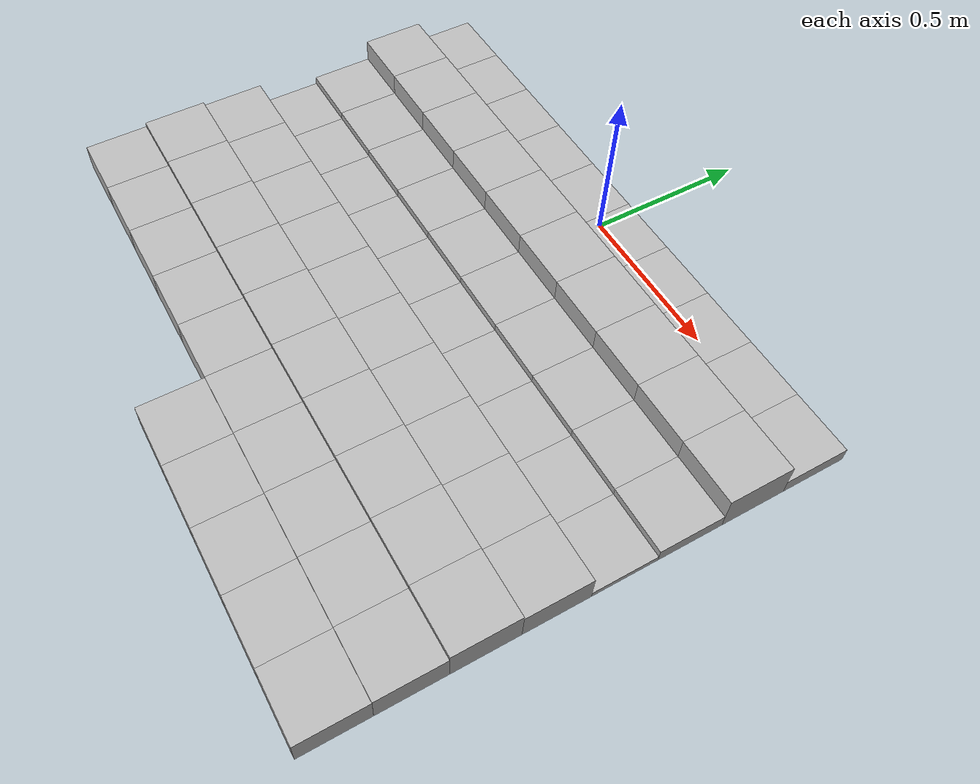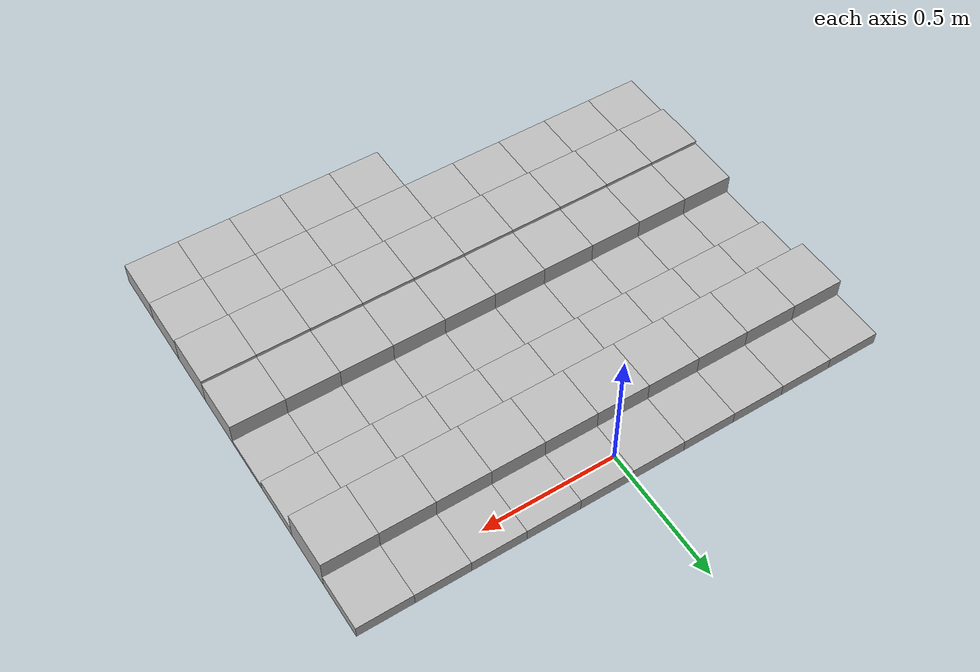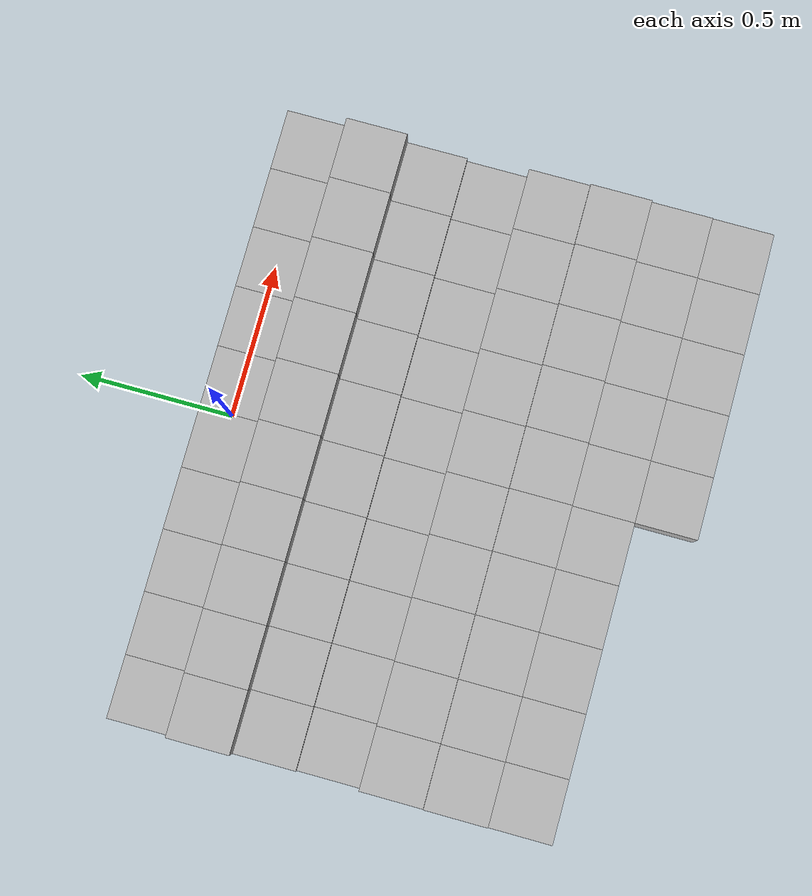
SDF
<sdf version="1.6">
 <model name="Terrain">
  <static>true</static>
  <link name="box_0_0">
   <pose>-0.9 0.0 0.0240620152889 0 0 0</pose>
   <inertial>
    <mass>1.0</mass>
    <inertia><ixx>0.0</ixx><ixy>0.0</ixy><ixz>0.0</ixz><iyy>0.0</iyy><iyz>0.0</iyz><izz>0.0</izz></inertia>
   </inertial>
   <collision name="collision"><geometry><box><size>0.2 0.2 0.0481240305779</size></box></geometry></collision>
   <visual name="visual"><geometry><box><size>0.2 0.2 0.0481240305779</size></box></geometry></visual>
  </link>
  <link name="box_0_1">
   <pose>-0.7 0.0 0.0240620152889 0 0 0</pose>
   <inertial>
    <mass>1.0</mass>
    <inertia><ixx>0.0</ixx><ixy>0.0</ixy><ixz>0.0</ixz><iyy>0.0</iyy><iyz>0.0</iyz><izz>0.0</izz></inertia>
   </inertial>
   <collision name="collision"><geometry><box><size>0.2 0.2 0.0481240305779</size></box></geometry></collision>
   <visual name="visual"><geometry><box><size>0.2 0.2 0.0481240305779</size></box></geometry></visual>
  </link>
  <link name="box_0_2">
   <pose>-0.5 0.0 0.0240620152889 0 0 0</pose>
   <inertial>
    <mass>1.0</mass>
    <inertia><ixx>0.0</ixx><ixy>0.0</ixy><ixz>0.0</ixz><iyy>0.0</iyy><iyz>0.0</iyz><izz>0.0</izz></inertia>
   </inertial>
   <collision name="collision"><geometry><box><size>0.2 0.2 0.0481240305779</size></box></geometry></collision>
   <visual name="visual"><geometry><box><size>0.2 0.2 0.0481240305779</size></box></geometry></visual>
  </link>
  <link name="box_0_3">
   <pose>-0.3 0.0 0.0240620152889 0 0 0</pose>
   <inertial>
    <mass>1.0</mass>
    <inertia><ixx>0.0</ixx><ixy>0.0</ixy><ixz>0.0</ixz><iyy>0.0</iyy><iyz>0.0</iyz><izz>0.0</izz></inertia>
   </inertial>
   <collision name="collision"><geometry><box><size>0.2 0.2 0.0481240305779</size></box></geometry></collision>
   <visual name="visual"><geometry><box><size>0.2 0.2 0.0481240305779</size></box></geometry></visual>
  </link>
  <link name="box_0_4">
   <pose>-0.1 0.0 0.0240620152889 0 0 0</pose>
   <inertial>
    <mass>1.0</mass>
    <inertia><ixx>0.0</ixx><ixy>0.0</ixy><ixz>0.0</ixz><iyy>0.0</iyy><iyz>0.0</iyz><izz>0.0</izz></inertia>
   </inertial>
   <collision name="collision"><geometry><box><size>0.2 0.2 0.0481240305779</size></box></geometry></collision>
   <visual name="visual"><geometry><box><size>0.2 0.2 0.0481240305779</size></box></geometry></visual>
  </link>
  <link name="box_0_5">
   <pose>0.1 0.0 0.0240620152889 0 0 0</pose>
   <inertial>
    <mass>1.0</mass>
    <inertia><ixx>0.0</ixx><ixy>0.0</ixy><ixz>0.0</ixz><iyy>0.0</iyy><iyz>0.0</iyz><izz>0.0</izz></inertia>
   </inertial>
   <collision name="collision"><geometry><box><size>0.2 0.2 0.0481240305779</size></box></geometry></collision>
   <visual name="visual"><geometry><box><size>0.2 0.2 0.0481240305779</size></box></geometry></visual>
  </link>
  <link name="box_0_6">
   <pose>0.3 0.0 0.0240620152889 0 0 0</pose>
   <inertial>
    <mass>1.0</mass>
    <inertia><ixx>0.0</ixx><ixy>0.0</ixy><ixz>0.0</ixz><iyy>0.0</iyy><iyz>0.0</iyz><izz>0.0</izz></inertia>
   </inertial>
   <collision name="collision"><geometry><box><size>0.2 0.2 0.0481240305779</size></box></geometry></collision>
   <visual name="visual"><geometry><box><size>0.2 0.2 0.0481240305779</size></box></geometry></visual>
  </link>
  <link name="box_0_7">
   <pose>0.5 0.0 0.0240620152889 0 0 0</pose>
   <inertial>
    <mass>1.0</mass>
    <inertia><ixx>0.0</ixx><ixy>0.0</ixy><ixz>0.0</ixz><iyy>0.0</iyy><iyz>0.0</iyz><izz>0.0</izz></inertia>
   </inertial>
   <collision name="collision"><geometry><box><size>0.2 0.2 0.0481240305779</size></box></geometry></collision>
   <visual name="visual"><geometry><box><size>0.2 0.2 0.0481240305779</size></box></geometry></visual>
  </link>
  <link name="box_0_8">
   <pose>0.7 0.0 0.0240620152889 0 0 0</pose>
   <inertial>
    <mass>1.0</mass>
    <inertia><ixx>0.0</ixx><ixy>0.0</ixy><ixz>0.0</ixz><iyy>0.0</iyy><iyz>0.0</iyz><izz>0.0</izz></inertia>
   </inertial>
   <collision name="collision"><geometry><box><size>0.2 0.2 0.0481240305779</size></box></geometry></collision>
   <visual name="visual"><geometry><box><size>0.2 0.2 0.0481240305779</size></box></geometry></visual>
  </link>
  <link name="box_0_9">
   <pose>0.9 0.0 0.0240620152889 0 0 0</pose>
   <inertial>
    <mass>1.0</mass>
    <inertia><ixx>0.0</ixx><ixy>0.0</ixy><ixz>0.0</ixz><iyy>0.0</iyy><iyz>0.0</iyz><izz>0.0</izz></inertia>
   </inertial>
   <collision name="collision"><geometry><box><size>0.2 0.2 0.0481240305779</size></box></geometry></collision>
   <visual name="visual"><geometry><box><size>0.2 0.2 0.0481240305779</size></box></geometry></visual>
  </link>
  <link name="box_1_0">
   <pose>-0.9 -0.2 0.0597477207047 0 0 0</pose>
   <inertial>
    <mass>1.0</mass>
    <inertia><ixx>0.0</ixx><ixy>0.0</ixy><ixz>0.0</ixz><iyy>0.0</iyy><iyz>0.0</iyz><izz>0.0</izz></inertia>
   </inertial>
   <collision name="collision"><geometry><box><size>0.2 0.2 0.119495441409</size></box></geometry></collision>
   <visual name="visual"><geometry><box><size>0.2 0.2 0.119495441409</size></box></geometry></visual>
  </link>
  <link name="box_1_1">
   <pose>-0.7 -0.2 0.0597477207047 0 0 0</pose>
   <inertial>
    <mass>1.0</mass>
    <inertia><ixx>0.0</ixx><ixy>0.0</ixy><ixz>0.0</ixz><iyy>0.0</iyy><iyz>0.0</iyz><izz>0.0</izz></inertia>
   </inertial>
   <collision name="collision"><geometry><box><size>0.2 0.2 0.119495441409</size></box></geometry></collision>
   <visual name="visual"><geometry><box><size>0.2 0.2 0.119495441409</size></box></geometry></visual>
  </link>
  <link name="box_1_2">
   <pose>-0.5 -0.2 0.0597477207047 0 0 0</pose>
   <inertial>
    <mass>1.0</mass>
    <inertia><ixx>0.0</ixx><ixy>0.0</ixy><ixz>0.0</ixz><iyy>0.0</iyy><iyz>0.0</iyz><izz>0.0</izz></inertia>
   </inertial>
   <collision name="collision"><geometry><box><size>0.2 0.2 0.119495441409</size></box></geometry></collision>
   <visual name="visual"><geometry><box><size>0.2 0.2 0.119495441409</size></box></geometry></visual>
  </link>
  <link name="box_1_3">
   <pose>-0.3 -0.2 0.0597477207047 0 0 0</pose>
   <inertial>
    <mass>1.0</mass>
    <inertia><ixx>0.0</ixx><ixy>0.0</ixy><ixz>0.0</ixz><iyy>0.0</iyy><iyz>0.0</iyz><izz>0.0</izz></inertia>
   </inertial>
   <collision name="collision"><geometry><box><size>0.2 0.2 0.119495441409</size></box></geometry></collision>
   <visual name="visual"><geometry><box><size>0.2 0.2 0.119495441409</size></box></geometry></visual>
  </link>
  <link name="box_1_4">
   <pose>-0.1 -0.2 0.0597477207047 0 0 0</pose>
   <inertial>
    <mass>1.0</mass>
    <inertia><ixx>0.0</ixx><ixy>0.0</ixy><ixz>0.0</ixz><iyy>0.0</iyy><iyz>0.0</iyz><izz>0.0</izz></inertia>
   </inertial>
   <collision name="collision"><geometry><box><size>0.2 0.2 0.119495441409</size></box></geometry></collision>
   <visual name="visual"><geometry><box><size>0.2 0.2 0.119495441409</size></box></geometry></visual>
  </link>
  <link name="box_1_5">
   <pose>0.1 -0.2 0.0597477207047 0 0 0</pose>
   <inertial>
    <mass>1.0</mass>
    <inertia><ixx>0.0</ixx><ixy>0.0</ixy><ixz>0.0</ixz><iyy>0.0</iyy><iyz>0.0</iyz><izz>0.0</izz></inertia>
   </inertial>
   <collision name="collision"><geometry><box><size>0.2 0.2 0.119495441409</size></box></geometry></collision>
   <visual name="visual"><geometry><box><size>0.2 0.2 0.119495441409</size></box></geometry></visual>
  </link>
  <link name="box_1_6">
   <pose>0.3 -0.2 0.0597477207047 0 0 0</pose>
   <inertial>
    <mass>1.0</mass>
    <inertia><ixx>0.0</ixx><ixy>0.0</ixy><ixz>0.0</ixz><iyy>0.0</iyy><iyz>0.0</iyz><izz>0.0</izz></inertia>
   </inertial>
   <collision name="collision"><geometry><box><size>0.2 0.2 0.119495441409</size></box></geometry></collision>
   <visual name="visual"><geometry><box><size>0.2 0.2 0.119495441409</size></box></geometry></visual>
  </link>
  <link name="box_1_7">
   <pose>0.5 -0.2 0.0597477207047 0 0 0</pose>
   <inertial>
    <mass>1.0</mass>
    <inertia><ixx>0.0</ixx><ixy>0.0</ixy><ixz>0.0</ixz><iyy>0.0</iyy><iyz>0.0</iyz><izz>0.0</izz></inertia>
   </inertial>
   <collision name="collision"><geometry><box><size>0.2 0.2 0.119495441409</size></box></geometry></collision>
   <visual name="visual"><geometry><box><size>0.2 0.2 0.119495441409</size></box></geometry></visual>
  </link>
  <link name="box_1_8">
   <pose>0.7 -0.2 0.0597477207047 0 0 0</pose>
   <inertial>
    <mass>1.0</mass>
    <inertia><ixx>0.0</ixx><ixy>0.0</ixy><ixz>0.0</ixz><iyy>0.0</iyy><iyz>0.0</iyz><izz>0.0</izz></inertia>
   </inertial>
   <collision name="collision"><geometry><box><size>0.2 0.2 0.119495441409</size></box></geometry></collision>
   <visual name="visual"><geometry><box><size>0.2 0.2 0.119495441409</size></box></geometry></visual>
  </link>
  <link name="box_1_9">
   <pose>0.9 -0.2 0.0597477207047 0 0 0</pose>
   <inertial>
    <mass>1.0</mass>
    <inertia><ixx>0.0</ixx><ixy>0.0</ixy><ixz>0.0</ixz><iyy>0.0</iyy><iyz>0.0</iyz><izz>0.0</izz></inertia>
   </inertial>
   <collision name="collision"><geometry><box><size>0.2 0.2 0.119495441409</size></box></geometry></collision>
   <visual name="visual"><geometry><box><size>0.2 0.2 0.119495441409</size></box></geometry></visual>
  </link>
  <link name="box_2_0">
   <pose>-0.9 -0.4 0.0225074383357 0 0 0</pose>
   <inertial>
    <mass>1.0</mass>
    <inertia><ixx>0.0</ixx><ixy>0.0</ixy><ixz>0.0</ixz><iyy>0.0</iyy><iyz>0.0</iyz><izz>0.0</izz></inertia>
   </inertial>
   <collision name="collision"><geometry><box><size>0.2 0.2 0.0450148766714</size></box></geometry></collision>
   <visual name="visual"><geometry><box><size>0.2 0.2 0.0450148766714</size></box></geometry></visual>
  </link>
  <link name="box_2_1">
   <pose>-0.7 -0.4 0.0225074383357 0 0 0</pose>
   <inertial>
    <mass>1.0</mass>
    <inertia><ixx>0.0</ixx><ixy>0.0</ixy><ixz>0.0</ixz><iyy>0.0</iyy><iyz>0.0</iyz><izz>0.0</izz></inertia>
   </inertial>
   <collision name="collision"><geometry><box><size>0.2 0.2 0.0450148766714</size></box></geometry></collision>
   <visual name="visual"><geometry><box><size>0.2 0.2 0.0450148766714</size></box></geometry></visual>
  </link>
  <link name="box_2_2">
   <pose>-0.5 -0.4 0.0225074383357 0 0 0</pose>
   <inertial>
    <mass>1.0</mass>
    <inertia><ixx>0.0</ixx><ixy>0.0</ixy><ixz>0.0</ixz><iyy>0.0</iyy><iyz>0.0</iyz><izz>0.0</izz></inertia>
   </inertial>
   <collision name="collision"><geometry><box><size>0.2 0.2 0.0450148766714</size></box></geometry></collision>
   <visual name="visual"><geometry><box><size>0.2 0.2 0.0450148766714</size></box></geometry></visual>
  </link>
  <link name="box_2_3">
   <pose>-0.3 -0.4 0.0225074383357 0 0 0</pose>
   <inertial>
    <mass>1.0</mass>
    <inertia><ixx>0.0</ixx><ixy>0.0</ixy><ixz>0.0</ixz><iyy>0.0</iyy><iyz>0.0</iyz><izz>0.0</izz></inertia>
   </inertial>
   <collision name="collision"><geometry><box><size>0.2 0.2 0.0450148766714</size></box></geometry></collision>
   <visual name="visual"><geometry><box><size>0.2 0.2 0.0450148766714</size></box></geometry></visual>
  </link>
  <link name="box_2_4">
   <pose>-0.1 -0.4 0.0225074383357 0 0 0</pose>
   <inertial>
    <mass>1.0</mass>
    <inertia><ixx>0.0</ixx><ixy>0.0</ixy><ixz>0.0</ixz><iyy>0.0</iyy><iyz>0.0</iyz><izz>0.0</izz></inertia>
   </inertial>
   <collision name="collision"><geometry><box><size>0.2 0.2 0.0450148766714</size></box></geometry></collision>
   <visual name="visual"><geometry><box><size>0.2 0.2 0.0450148766714</size></box></geometry></visual>
  </link>
  <link name="box_2_5">
   <pose>0.1 -0.4 0.0225074383357 0 0 0</pose>
   <inertial>
    <mass>1.0</mass>
    <inertia><ixx>0.0</ixx><ixy>0.0</ixy><ixz>0.0</ixz><iyy>0.0</iyy><iyz>0.0</iyz><izz>0.0</izz></inertia>
   </inertial>
   <collision name="collision"><geometry><box><size>0.2 0.2 0.0450148766714</size></box></geometry></collision>
   <visual name="visual"><geometry><box><size>0.2 0.2 0.0450148766714</size></box></geometry></visual>
  </link>
  <link name="box_2_6">
   <pose>0.3 -0.4 0.0225074383357 0 0 0</pose>
   <inertial>
    <mass>1.0</mass>
    <inertia><ixx>0.0</ixx><ixy>0.0</ixy><ixz>0.0</ixz><iyy>0.0</iyy><iyz>0.0</iyz><izz>0.0</izz></inertia>
   </inertial>
   <collision name="collision"><geometry><box><size>0.2 0.2 0.0450148766714</size></box></geometry></collision>
   <visual name="visual"><geometry><box><size>0.2 0.2 0.0450148766714</size></box></geometry></visual>
  </link>
  <link name="box_2_7">
   <pose>0.5 -0.4 0.0225074383357 0 0 0</pose>
   <inertial>
    <mass>1.0</mass>
    <inertia><ixx>0.0</ixx><ixy>0.0</ixy><ixz>0.0</ixz><iyy>0.0</iyy><iyz>0.0</iyz><izz>0.0</izz></inertia>
   </inertial>
   <collision name="collision"><geometry><box><size>0.2 0.2 0.0450148766714</size></box></geometry></collision>
   <visual name="visual"><geometry><box><size>0.2 0.2 0.0450148766714</size></box></geometry></visual>
  </link>
  <link name="box_2_8">
   <pose>0.7 -0.4 0.0225074383357 0 0 0</pose>
   <inertial>
    <mass>1.0</mass>
    <inertia><ixx>0.0</ixx><ixy>0.0</ixy><ixz>0.0</ixz><iyy>0.0</iyy><iyz>0.0</iyz><izz>0.0</izz></inertia>
   </inertial>
   <collision name="collision"><geometry><box><size>0.2 0.2 0.0450148766714</size></box></geometry></collision>
   <visual name="visual"><geometry><box><size>0.2 0.2 0.0450148766714</size></box></geometry></visual>
  </link>
  <link name="box_2_9">
   <pose>0.9 -0.4 0.0225074383357 0 0 0</pose>
   <inertial>
    <mass>1.0</mass>
    <inertia><ixx>0.0</ixx><ixy>0.0</ixy><ixz>0.0</ixz><iyy>0.0</iyy><iyz>0.0</iyz><izz>0.0</izz></inertia>
   </inertial>
   <collision name="collision"><geometry><box><size>0.2 0.2 0.0450148766714</size></box></geometry></collision>
   <visual name="visual"><geometry><box><size>0.2 0.2 0.0450148766714</size></box></geometry></visual>
  </link>
  <link name="box_3_0">
   <pose>-0.9 -0.6 0.00948579202365 0 0 0</pose>
   <inertial>
    <mass>1.0</mass>
    <inertia><ixx>0.0</ixx><ixy>0.0</ixy><ixz>0.0</ixz><iyy>0.0</iyy><iyz>0.0</iyz><izz>0.0</izz></inertia>
   </inertial>
   <collision name="collision"><geometry><box><size>0.2 0.2 0.0189715840473</size></box></geometry></collision>
   <visual name="visual"><geometry><box><size>0.2 0.2 0.0189715840473</size></box></geometry></visual>
  </link>
  <link name="box_3_1">
   <pose>-0.7 -0.6 0.00948579202365 0 0 0</pose>
   <inertial>
    <mass>1.0</mass>
    <inertia><ixx>0.0</ixx><ixy>0.0</ixy><ixz>0.0</ixz><iyy>0.0</iyy><iyz>0.0</iyz><izz>0.0</izz></inertia>
   </inertial>
   <collision name="collision"><geometry><box><size>0.2 0.2 0.0189715840473</size></box></geometry></collision>
   <visual name="visual"><geometry><box><size>0.2 0.2 0.0189715840473</size></box></geometry></visual>
  </link>
  <link name="box_3_2">
   <pose>-0.5 -0.6 0.00948579202365 0 0 0</pose>
   <inertial>
    <mass>1.0</mass>
    <inertia><ixx>0.0</ixx><ixy>0.0</ixy><ixz>0.0</ixz><iyy>0.0</iyy><iyz>0.0</iyz><izz>0.0</izz></inertia>
   </inertial>
   <collision name="collision"><geometry><box><size>0.2 0.2 0.0189715840473</size></box></geometry></collision>
   <visual name="visual"><geometry><box><size>0.2 0.2 0.0189715840473</size></box></geometry></visual>
  </link>
  <link name="box_3_3">
   <pose>-0.3 -0.6 0.00948579202365 0 0 0</pose>
   <inertial>
    <mass>1.0</mass>
    <inertia><ixx>0.0</ixx><ixy>0.0</ixy><ixz>0.0</ixz><iyy>0.0</iyy><iyz>0.0</iyz><izz>0.0</izz></inertia>
   </inertial>
   <collision name="collision"><geometry><box><size>0.2 0.2 0.0189715840473</size></box></geometry></collision>
   <visual name="visual"><geometry><box><size>0.2 0.2 0.0189715840473</size></box></geometry></visual>
  </link>
  <link name="box_3_4">
   <pose>-0.1 -0.6 0.00948579202365 0 0 0</pose>
   <inertial>
    <mass>1.0</mass>
    <inertia><ixx>0.0</ixx><ixy>0.0</ixy><ixz>0.0</ixz><iyy>0.0</iyy><iyz>0.0</iyz><izz>0.0</izz></inertia>
   </inertial>
   <collision name="collision"><geometry><box><size>0.2 0.2 0.0189715840473</size></box></geometry></collision>
   <visual name="visual"><geometry><box><size>0.2 0.2 0.0189715840473</size></box></geometry></visual>
  </link>
  <link name="box_3_5">
   <pose>0.1 -0.6 0.00948579202365 0 0 0</pose>
   <inertial>
    <mass>1.0</mass>
    <inertia><ixx>0.0</ixx><ixy>0.0</ixy><ixz>0.0</ixz><iyy>0.0</iyy><iyz>0.0</iyz><izz>0.0</izz></inertia>
   </inertial>
   <collision name="collision"><geometry><box><size>0.2 0.2 0.0189715840473</size></box></geometry></collision>
   <visual name="visual"><geometry><box><size>0.2 0.2 0.0189715840473</size></box></geometry></visual>
  </link>
  <link name="box_3_6">
   <pose>0.3 -0.6 0.00948579202365 0 0 0</pose>
   <inertial>
    <mass>1.0</mass>
    <inertia><ixx>0.0</ixx><ixy>0.0</ixy><ixz>0.0</ixz><iyy>0.0</iyy><iyz>0.0</iyz><izz>0.0</izz></inertia>
   </inertial>
   <collision name="collision"><geometry><box><size>0.2 0.2 0.0189715840473</size></box></geometry></collision>
   <visual name="visual"><geometry><box><size>0.2 0.2 0.0189715840473</size></box></geometry></visual>
  </link>
  <link name="box_3_7">
   <pose>0.5 -0.6 0.00948579202365 0 0 0</pose>
   <inertial>
    <mass>1.0</mass>
    <inertia><ixx>0.0</ixx><ixy>0.0</ixy><ixz>0.0</ixz><iyy>0.0</iyy><iyz>0.0</iyz><izz>0.0</izz></inertia>
   </inertial>
   <collision name="collision"><geometry><box><size>0.2 0.2 0.0189715840473</size></box></geometry></collision>
   <visual name="visual"><geometry><box><size>0.2 0.2 0.0189715840473</size></box></geometry></visual>
  </link>
  <link name="box_3_8">
   <pose>0.7 -0.6 0.00948579202365 0 0 0</pose>
   <inertial>
    <mass>1.0</mass>
    <inertia><ixx>0.0</ixx><ixy>0.0</ixy><ixz>0.0</ixz><iyy>0.0</iyy><iyz>0.0</iyz><izz>0.0</izz></inertia>
   </inertial>
   <collision name="collision"><geometry><box><size>0.2 0.2 0.0189715840473</size></box></geometry></collision>
   <visual name="visual"><geometry><box><size>0.2 0.2 0.0189715840473</size></box></geometry></visual>
  </link>
  <link name="box_3_9">
   <pose>0.9 -0.6 0.00948579202365 0 0 0</pose>
   <inertial>
    <mass>1.0</mass>
    <inertia><ixx>0.0</ixx><ixy>0.0</ixy><ixz>0.0</ixz><iyy>0.0</iyy><iyz>0.0</iyz><izz>0.0</izz></inertia>
   </inertial>
   <collision name="collision"><geometry><box><size>0.2 0.2 0.0189715840473</size></box></geometry></collision>
   <visual name="visual"><geometry><box><size>0.2 0.2 0.0189715840473</size></box></geometry></visual>
  </link>
  <link name="box_4_0">
   <pose>-0.9 -0.8 0.0472567781438 0 0 0</pose>
   <inertial>
    <mass>1.0</mass>
    <inertia><ixx>0.0</ixx><ixy>0.0</ixy><ixz>0.0</ixz><iyy>0.0</iyy><iyz>0.0</iyz><izz>0.0</izz></inertia>
   </inertial>
   <collision name="collision"><geometry><box><size>0.2 0.2 0.0945135562877</size></box></geometry></collision>
   <visual name="visual"><geometry><box><size>0.2 0.2 0.0945135562877</size></box></geometry></visual>
  </link>
  <link name="box_4_1">
   <pose>-0.7 -0.8 0.0472567781438 0 0 0</pose>
   <inertial>
    <mass>1.0</mass>
    <inertia><ixx>0.0</ixx><ixy>0.0</ixy><ixz>0.0</ixz><iyy>0.0</iyy><iyz>0.0</iyz><izz>0.0</izz></inertia>
   </inertial>
   <collision name="collision"><geometry><box><size>0.2 0.2 0.0945135562877</size></box></geometry></collision>
   <visual name="visual"><geometry><box><size>0.2 0.2 0.0945135562877</size></box></geometry></visual>
  </link>
  <link name="box_4_2">
   <pose>-0.5 -0.8 0.0472567781438 0 0 0</pose>
   <inertial>
    <mass>1.0</mass>
    <inertia><ixx>0.0</ixx><ixy>0.0</ixy><ixz>0.0</ixz><iyy>0.0</iyy><iyz>0.0</iyz><izz>0.0</izz></inertia>
   </inertial>
   <collision name="collision"><geometry><box><size>0.2 0.2 0.0945135562877</size></box></geometry></collision>
   <visual name="visual"><geometry><box><size>0.2 0.2 0.0945135562877</size></box></geometry></visual>
  </link>
  <link name="box_4_3">
   <pose>-0.3 -0.8 0.0472567781438 0 0 0</pose>
   <inertial>
    <mass>1.0</mass>
    <inertia><ixx>0.0</ixx><ixy>0.0</ixy><ixz>0.0</ixz><iyy>0.0</iyy><iyz>0.0</iyz><izz>0.0</izz></inertia>
   </inertial>
   <collision name="collision"><geometry><box><size>0.2 0.2 0.0945135562877</size></box></geometry></collision>
   <visual name="visual"><geometry><box><size>0.2 0.2 0.0945135562877</size></box></geometry></visual>
  </link>
  <link name="box_4_4">
   <pose>-0.1 -0.8 0.0472567781438 0 0 0</pose>
   <inertial>
    <mass>1.0</mass>
    <inertia><ixx>0.0</ixx><ixy>0.0</ixy><ixz>0.0</ixz><iyy>0.0</iyy><iyz>0.0</iyz><izz>0.0</izz></inertia>
   </inertial>
   <collision name="collision"><geometry><box><size>0.2 0.2 0.0945135562877</size></box></geometry></collision>
   <visual name="visual"><geometry><box><size>0.2 0.2 0.0945135562877</size></box></geometry></visual>
  </link>
  <link name="box_4_5">
   <pose>0.1 -0.8 0.0472567781438 0 0 0</pose>
   <inertial>
    <mass>1.0</mass>
    <inertia><ixx>0.0</ixx><ixy>0.0</ixy><ixz>0.0</ixz><iyy>0.0</iyy><iyz>0.0</iyz><izz>0.0</izz></inertia>
   </inertial>
   <collision name="collision"><geometry><box><size>0.2 0.2 0.0945135562877</size></box></geometry></collision>
   <visual name="visual"><geometry><box><size>0.2 0.2 0.0945135562877</size></box></geometry></visual>
  </link>
  <link name="box_4_6">
   <pose>0.3 -0.8 0.0472567781438 0 0 0</pose>
   <inertial>
    <mass>1.0</mass>
    <inertia><ixx>0.0</ixx><ixy>0.0</ixy><ixz>0.0</ixz><iyy>0.0</iyy><iyz>0.0</iyz><izz>0.0</izz></inertia>
   </inertial>
   <collision name="collision"><geometry><box><size>0.2 0.2 0.0945135562877</size></box></geometry></collision>
   <visual name="visual"><geometry><box><size>0.2 0.2 0.0945135562877</size></box></geometry></visual>
  </link>
  <link name="box_4_7">
   <pose>0.5 -0.8 0.0472567781438 0 0 0</pose>
   <inertial>
    <mass>1.0</mass>
    <inertia><ixx>0.0</ixx><ixy>0.0</ixy><ixz>0.0</ixz><iyy>0.0</iyy><iyz>0.0</iyz><izz>0.0</izz></inertia>
   </inertial>
   <collision name="collision"><geometry><box><size>0.2 0.2 0.0945135562877</size></box></geometry></collision>
   <visual name="visual"><geometry><box><size>0.2 0.2 0.0945135562877</size></box></geometry></visual>
  </link>
  <link name="box_4_8">
   <pose>0.7 -0.8 0.0472567781438 0 0 0</pose>
   <inertial>
    <mass>1.0</mass>
    <inertia><ixx>0.0</ixx><ixy>0.0</ixy><ixz>0.0</ixz><iyy>0.0</iyy><iyz>0.0</iyz><izz>0.0</izz></inertia>
   </inertial>
   <collision name="collision"><geometry><box><size>0.2 0.2 0.0945135562877</size></box></geometry></collision>
   <visual name="visual"><geometry><box><size>0.2 0.2 0.0945135562877</size></box></geometry></visual>
  </link>
  <link name="box_4_9">
   <pose>0.9 -0.8 0.0472567781438 0 0 0</pose>
   <inertial>
    <mass>1.0</mass>
    <inertia><ixx>0.0</ixx><ixy>0.0</ixy><ixz>0.0</ixz><iyy>0.0</iyy><iyz>0.0</iyz><izz>0.0</izz></inertia>
   </inertial>
   <collision name="collision"><geometry><box><size>0.2 0.2 0.0945135562877</size></box></geometry></collision>
   <visual name="visual"><geometry><box><size>0.2 0.2 0.0945135562877</size></box></geometry></visual>
  </link>
  <link name="box_5_0">
   <pose>-0.9 -1.0 0.053304460013 0 0 0</pose>
   <inertial>
    <mass>1.0</mass>
    <inertia><ixx>0.0</ixx><ixy>0.0</ixy><ixz>0.0</ixz><iyy>0.0</iyy><iyz>0.0</iyz><izz>0.0</izz></inertia>
   </inertial>
   <collision name="collision"><geometry><box><size>0.2 0.2 0.106608920026</size></box></geometry></collision>
   <visual name="visual"><geometry><box><size>0.2 0.2 0.106608920026</size></box></geometry></visual>
  </link>
  <link name="box_5_1">
   <pose>-0.7 -1.0 0.053304460013 0 0 0</pose>
   <inertial>
    <mass>1.0</mass>
    <inertia><ixx>0.0</ixx><ixy>0.0</ixy><ixz>0.0</ixz><iyy>0.0</iyy><iyz>0.0</iyz><izz>0.0</izz></inertia>
   </inertial>
   <collision name="collision"><geometry><box><size>0.2 0.2 0.106608920026</size></box></geometry></collision>
   <visual name="visual"><geometry><box><size>0.2 0.2 0.106608920026</size></box></geometry></visual>
  </link>
  <link name="box_5_2">
   <pose>-0.5 -1.0 0.053304460013 0 0 0</pose>
   <inertial>
    <mass>1.0</mass>
    <inertia><ixx>0.0</ixx><ixy>0.0</ixy><ixz>0.0</ixz><iyy>0.0</iyy><iyz>0.0</iyz><izz>0.0</izz></inertia>
   </inertial>
   <collision name="collision"><geometry><box><size>0.2 0.2 0.106608920026</size></box></geometry></collision>
   <visual name="visual"><geometry><box><size>0.2 0.2 0.106608920026</size></box></geometry></visual>
  </link>
  <link name="box_5_3">
   <pose>-0.3 -1.0 0.053304460013 0 0 0</pose>
   <inertial>
    <mass>1.0</mass>
    <inertia><ixx>0.0</ixx><ixy>0.0</ixy><ixz>0.0</ixz><iyy>0.0</iyy><iyz>0.0</iyz><izz>0.0</izz></inertia>
   </inertial>
   <collision name="collision"><geometry><box><size>0.2 0.2 0.106608920026</size></box></geometry></collision>
   <visual name="visual"><geometry><box><size>0.2 0.2 0.106608920026</size></box></geometry></visual>
  </link>
  <link name="box_5_4">
   <pose>-0.1 -1.0 0.053304460013 0 0 0</pose>
   <inertial>
    <mass>1.0</mass>
    <inertia><ixx>0.0</ixx><ixy>0.0</ixy><ixz>0.0</ixz><iyy>0.0</iyy><iyz>0.0</iyz><izz>0.0</izz></inertia>
   </inertial>
   <collision name="collision"><geometry><box><size>0.2 0.2 0.106608920026</size></box></geometry></collision>
   <visual name="visual"><geometry><box><size>0.2 0.2 0.106608920026</size></box></geometry></visual>
  </link>
  <link name="box_5_5">
   <pose>0.1 -1.0 0.053304460013 0 0 0</pose>
   <inertial>
    <mass>1.0</mass>
    <inertia><ixx>0.0</ixx><ixy>0.0</ixy><ixz>0.0</ixz><iyy>0.0</iyy><iyz>0.0</iyz><izz>0.0</izz></inertia>
   </inertial>
   <collision name="collision"><geometry><box><size>0.2 0.2 0.106608920026</size></box></geometry></collision>
   <visual name="visual"><geometry><box><size>0.2 0.2 0.106608920026</size></box></geometry></visual>
  </link>
  <link name="box_5_6">
   <pose>0.3 -1.0 0.053304460013 0 0 0</pose>
   <inertial>
    <mass>1.0</mass>
    <inertia><ixx>0.0</ixx><ixy>0.0</ixy><ixz>0.0</ixz><iyy>0.0</iyy><iyz>0.0</iyz><izz>0.0</izz></inertia>
   </inertial>
   <collision name="collision"><geometry><box><size>0.2 0.2 0.106608920026</size></box></geometry></collision>
   <visual name="visual"><geometry><box><size>0.2 0.2 0.106608920026</size></box></geometry></visual>
  </link>
  <link name="box_5_7">
   <pose>0.5 -1.0 0.053304460013 0 0 0</pose>
   <inertial>
    <mass>1.0</mass>
    <inertia><ixx>0.0</ixx><ixy>0.0</ixy><ixz>0.0</ixz><iyy>0.0</iyy><iyz>0.0</iyz><izz>0.0</izz></inertia>
   </inertial>
   <collision name="collision"><geometry><box><size>0.2 0.2 0.106608920026</size></box></geometry></collision>
   <visual name="visual"><geometry><box><size>0.2 0.2 0.106608920026</size></box></geometry></visual>
  </link>
  <link name="box_5_8">
   <pose>0.7 -1.0 0.053304460013 0 0 0</pose>
   <inertial>
    <mass>1.0</mass>
    <inertia><ixx>0.0</ixx><ixy>0.0</ixy><ixz>0.0</ixz><iyy>0.0</iyy><iyz>0.0</iyz><izz>0.0</izz></inertia>
   </inertial>
   <collision name="collision"><geometry><box><size>0.2 0.2 0.106608920026</size></box></geometry></collision>
   <visual name="visual"><geometry><box><size>0.2 0.2 0.106608920026</size></box></geometry></visual>
  </link>
  <link name="box_5_9">
   <pose>0.9 -1.0 0.053304460013 0 0 0</pose>
   <inertial>
    <mass>1.0</mass>
    <inertia><ixx>0.0</ixx><ixy>0.0</ixy><ixz>0.0</ixz><iyy>0.0</iyy><iyz>0.0</iyz><izz>0.0</izz></inertia>
   </inertial>
   <collision name="collision"><geometry><box><size>0.2 0.2 0.106608920026</size></box></geometry></collision>
   <visual name="visual"><geometry><box><size>0.2 0.2 0.106608920026</size></box></geometry></visual>
  </link>
  <link name="box_6_0">
   <pose>-0.9 -1.2 0.0457264243752 0 0 0</pose>
   <inertial>
    <mass>1.0</mass>
    <inertia><ixx>0.0</ixx><ixy>0.0</ixy><ixz>0.0</ixz><iyy>0.0</iyy><iyz>0.0</iyz><izz>0.0</izz></inertia>
   </inertial>
   <collision name="collision"><geometry><box><size>0.2 0.2 0.0914528487503</size></box></geometry></collision>
   <visual name="visual"><geometry><box><size>0.2 0.2 0.0914528487503</size></box></geometry></visual>
  </link>
  <link name="box_6_1">
   <pose>-0.7 -1.2 0.0457264243752 0 0 0</pose>
   <inertial>
    <mass>1.0</mass>
    <inertia><ixx>0.0</ixx><ixy>0.0</ixy><ixz>0.0</ixz><iyy>0.0</iyy><iyz>0.0</iyz><izz>0.0</izz></inertia>
   </inertial>
   <collision name="collision"><geometry><box><size>0.2 0.2 0.0914528487503</size></box></geometry></collision>
   <visual name="visual"><geometry><box><size>0.2 0.2 0.0914528487503</size></box></geometry></visual>
  </link>
  <link name="box_6_2">
   <pose>-0.5 -1.2 0.0457264243752 0 0 0</pose>
   <inertial>
    <mass>1.0</mass>
    <inertia><ixx>0.0</ixx><ixy>0.0</ixy><ixz>0.0</ixz><iyy>0.0</iyy><iyz>0.0</iyz><izz>0.0</izz></inertia>
   </inertial>
   <collision name="collision"><geometry><box><size>0.2 0.2 0.0914528487503</size></box></geometry></collision>
   <visual name="visual"><geometry><box><size>0.2 0.2 0.0914528487503</size></box></geometry></visual>
  </link>
  <link name="box_6_3">
   <pose>-0.3 -1.2 0.0457264243752 0 0 0</pose>
   <inertial>
    <mass>1.0</mass>
    <inertia><ixx>0.0</ixx><ixy>0.0</ixy><ixz>0.0</ixz><iyy>0.0</iyy><iyz>0.0</iyz><izz>0.0</izz></inertia>
   </inertial>
   <collision name="collision"><geometry><box><size>0.2 0.2 0.0914528487503</size></box></geometry></collision>
   <visual name="visual"><geometry><box><size>0.2 0.2 0.0914528487503</size></box></geometry></visual>
  </link>
  <link name="box_6_4">
   <pose>-0.1 -1.2 0.0457264243752 0 0 0</pose>
   <inertial>
    <mass>1.0</mass>
    <inertia><ixx>0.0</ixx><ixy>0.0</ixy><ixz>0.0</ixz><iyy>0.0</iyy><iyz>0.0</iyz><izz>0.0</izz></inertia>
   </inertial>
   <collision name="collision"><geometry><box><size>0.2 0.2 0.0914528487503</size></box></geometry></collision>
   <visual name="visual"><geometry><box><size>0.2 0.2 0.0914528487503</size></box></geometry></visual>
  </link>
  <link name="box_6_5">
   <pose>0.1 -1.2 0.0457264243752 0 0 0</pose>
   <inertial>
    <mass>1.0</mass>
    <inertia><ixx>0.0</ixx><ixy>0.0</ixy><ixz>0.0</ixz><iyy>0.0</iyy><iyz>0.0</iyz><izz>0.0</izz></inertia>
   </inertial>
   <collision name="collision"><geometry><box><size>0.2 0.2 0.0914528487503</size></box></geometry></collision>
   <visual name="visual"><geometry><box><size>0.2 0.2 0.0914528487503</size></box></geometry></visual>
  </link>
  <link name="box_6_6">
   <pose>0.3 -1.2 0.0457264243752 0 0 0</pose>
   <inertial>
    <mass>1.0</mass>
    <inertia><ixx>0.0</ixx><ixy>0.0</ixy><ixz>0.0</ixz><iyy>0.0</iyy><iyz>0.0</iyz><izz>0.0</izz></inertia>
   </inertial>
   <collision name="collision"><geometry><box><size>0.2 0.2 0.0914528487503</size></box></geometry></collision>
   <visual name="visual"><geometry><box><size>0.2 0.2 0.0914528487503</size></box></geometry></visual>
  </link>
  <link name="box_6_7">
   <pose>0.5 -1.2 0.0457264243752 0 0 0</pose>
   <inertial>
    <mass>1.0</mass>
    <inertia><ixx>0.0</ixx><ixy>0.0</ixy><ixz>0.0</ixz><iyy>0.0</iyy><iyz>0.0</iyz><izz>0.0</izz></inertia>
   </inertial>
   <collision name="collision"><geometry><box><size>0.2 0.2 0.0914528487503</size></box></geometry></collision>
   <visual name="visual"><geometry><box><size>0.2 0.2 0.0914528487503</size></box></geometry></visual>
  </link>
  <link name="box_6_8">
   <pose>0.7 -1.2 0.0457264243752 0 0 0</pose>
   <inertial>
    <mass>1.0</mass>
    <inertia><ixx>0.0</ixx><ixy>0.0</ixy><ixz>0.0</ixz><iyy>0.0</iyy><iyz>0.0</iyz><izz>0.0</izz></inertia>
   </inertial>
   <collision name="collision"><geometry><box><size>0.2 0.2 0.0914528487503</size></box></geometry></collision>
   <visual name="visual"><geometry><box><size>0.2 0.2 0.0914528487503</size></box></geometry></visual>
  </link>
  <link name="box_6_9">
   <pose>0.9 -1.2 0.0457264243752 0 0 0</pose>
   <inertial>
    <mass>1.0</mass>
    <inertia><ixx>0.0</ixx><ixy>0.0</ixy><ixz>0.0</ixz><iyy>0.0</iyy><iyz>0.0</iyz><izz>0.0</izz></inertia>
   </inertial>
   <collision name="collision"><geometry><box><size>0.2 0.2 0.0914528487503</size></box></geometry></collision>
   <visual name="visual"><geometry><box><size>0.2 0.2 0.0914528487503</size></box></geometry></visual>
  </link>
  <link name="box_7_5">
   <pose>0.1 -1.4 0.0438763169991 0 0 0</pose>
   <inertial>
    <mass>1.0</mass>
    <inertia><ixx>0.0</ixx><ixy>0.0</ixy><ixz>0.0</ixz><iyy>0.0</iyy><iyz>0.0</iyz><izz>0.0</izz></inertia>
   </inertial>
   <collision name="collision"><geometry><box><size>0.2 0.2 0.0877526339982</size></box></geometry></collision>
   <visual name="visual"><geometry><box><size>0.2 0.2 0.0877526339982</size></box></geometry></visual>
  </link>
  <link name="box_7_6">
   <pose>0.3 -1.4 0.0438763169991 0 0 0</pose>
   <inertial>
    <mass>1.0</mass>
    <inertia><ixx>0.0</ixx><ixy>0.0</ixy><ixz>0.0</ixz><iyy>0.0</iyy><iyz>0.0</iyz><izz>0.0</izz></inertia>
   </inertial>
   <collision name="collision"><geometry><box><size>0.2 0.2 0.0877526339982</size></box></geometry></collision>
   <visual name="visual"><geometry><box><size>0.2 0.2 0.0877526339982</size></box></geometry></visual>
  </link>
  <link name="box_7_7">
   <pose>0.5 -1.4 0.0438763169991 0 0 0</pose>
   <inertial>
    <mass>1.0</mass>
    <inertia><ixx>0.0</ixx><ixy>0.0</ixy><ixz>0.0</ixz><iyy>0.0</iyy><iyz>0.0</iyz><izz>0.0</izz></inertia>
   </inertial>
   <collision name="collision"><geometry><box><size>0.2 0.2 0.0877526339982</size></box></geometry></collision>
   <visual name="visual"><geometry><box><size>0.2 0.2 0.0877526339982</size></box></geometry></visual>
  </link>
  <link name="box_7_8">
   <pose>0.7 -1.4 0.0438763169991 0 0 0</pose>
   <inertial>
    <mass>1.0</mass>
    <inertia><ixx>0.0</ixx><ixy>0.0</ixy><ixz>0.0</ixz><iyy>0.0</iyy><iyz>0.0</iyz><izz>0.0</izz></inertia>
   </inertial>
   <collision name="collision"><geometry><box><size>0.2 0.2 0.0877526339982</size></box></geometry></collision>
   <visual name="visual"><geometry><box><size>0.2 0.2 0.0877526339982</size></box></geometry></visual>
  </link>
  <link name="box_7_9">
   <pose>0.9 -1.4 0.0438763169991 0 0 0</pose>
   <inertial>
    <mass>1.0</mass>
    <inertia><ixx>0.0</ixx><ixy>0.0</ixy><ixz>0.0</ixz><iyy>0.0</iyy><iyz>0.0</iyz><izz>0.0</izz></inertia>
   </inertial>
   <collision name="collision"><geometry><box><size>0.2 0.2 0.0877526339982</size></box></geometry></collision>
   <visual name="visual"><geometry><box><size>0.2 0.2 0.0877526339982</size></box></geometry></visual>
  </link>
 </model>
</sdf>
